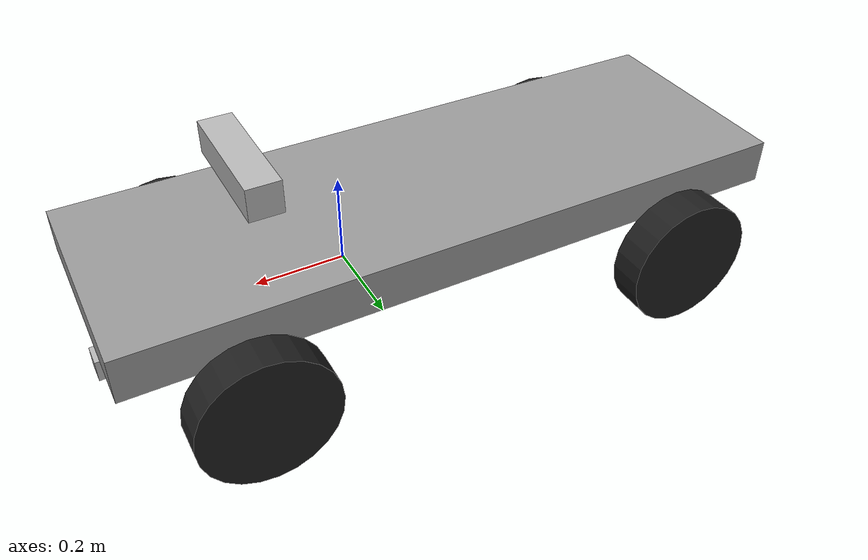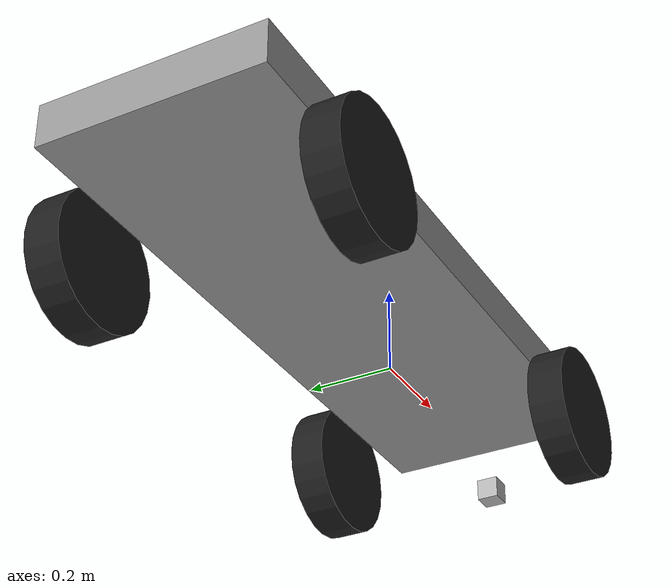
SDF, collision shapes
<?xml version="1.0" encoding="UTF-8"?>
<sdf version='1.6'>
  <model name='laser_rover'>
    <include>
      <uri>model://basic_rover</uri>
      <name>base</name>
    </include>
    <!--  3D LIDAR  -->
    <model name="laser_link">
      <link name="laser_left_link">
        <pose>0.53 0 -0.07 0 0 0</pose>
        <collision name="top_collision">
          <geometry>
            <box>
              <size>0.05 0.05 0.05</size>
            </box>
          </geometry>
        </collision>
        <visual name="laser_left_visual">
          <geometry>
            <box>
              <size>0.06 0.05 0.05</size>
            </box>
          </geometry>
        </visual>
        <inertial>
          <mass>0.1</mass>
          <inertia>
            <ixx>0.000011023</ixx>
            <iyy>0.000010623</iyy>
            <izz>0.000010036</izz>
            <ixy>0</ixy>
            <ixz>0</ixz>
            <iyz>0</iyz>
          </inertia>
        </inertial>
        <sensor type="ray" name="left_laser_sensor">
          <pose>0.03 0 0 0 1.5707 0</pose>
          <visualize>true</visualize>
          <update_rate>30</update_rate>
          <plugin name="laser_plugin" filename="libgazebo_ros_laser.so">
            <topicName>/scan</topicName>
            <frameName>laser_link</frameName>
          </plugin>
          <ray>
            <!-- The scan element contains the horizontal and vertical beams.-->
            <!-- Specs based on the HPS-3D160 Solid-state LIDAR -->
            <scan>
              <!-- The horizontal beams -->
              <horizontal>
                <samples>12</samples>
                <resolution>1</resolution>
                <min_angle>-0.53529248</min_angle>
                <max_angle>76</max_angle>
              </horizontal>
              <!-- The vertical beams -->
              <vertical>
                <samples>8</samples>
                <resolution>1</resolution>
                <min_angle>-0.53529248</min_angle>
                <max_angle>32</max_angle>
              </vertical>
            </scan>
            <range>
              <min>0.05</min>
              <max>12</max>
              <resolution>0.001</resolution>
            </range>
          </ray>
        </sensor>
      </link>
    </model>
    <joint name='chassis_left_laser_joint' type='fixed'>
      <parent>cart_front_steer::chassis</parent>
      <child>laser_link::laser_left_link</child>
      <pose frame=''>0.53 0 -0.07 0 0 0</pose>
      <physics>
        <ode>
          <limit>
            <cfm>0</cfm>
            <erp>0.2</erp>
          </limit>
          <suspension>
            <cfm>0</cfm>
            <erp>0.2</erp>
          </suspension>
        </ode>
      </physics>
    </joint>
  </model>
</sdf>

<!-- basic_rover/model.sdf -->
<sdf version='1.6'>
  <model name='basic_rover'>
    <model name='cart_front_steer'>
      <link name='chassis'>
        <pose frame=''>0 0 0.3 0 -0 0</pose>
        <inertial>
          <pose frame=''>0.1 0 0 0 -0 0</pose>
          <mass>10</mass>
          <inertia>
            <ixx>0.216667</ixx>
            <iyy>0.841667</iyy>
            <izz>1.04167</izz>
            <ixy>0</ixy>
            <ixz>0</ixz>
            <iyz>0</iyz>
          </inertia>
        </inertial>
        <collision name='collision'>
          <geometry>
            <box>
              <size>1.5 0.5 0.1</size>
            </box>
          </geometry>
          <max_contacts>10</max_contacts>
          <surface>
            <contact>
              <ode/>
            </contact>
            <bounce/>
            <friction>
              <torsional>
                <ode/>
              </torsional>
              <ode/>
            </friction>
          </surface>
        </collision>
        <visual name='visual'>
          <geometry>
            <box>
              <size>1.5 0.5 0.1</size>
            </box>
          </geometry>
          <material>
            <script>
              <uri>file://media/materials/scripts/gazebo.material</uri>
              <name>Gazebo/Grey</name>
            </script>
          </material>
        </visual>
        <self_collide>0</self_collide>
        <enable_wind>0</enable_wind>
        <kinematic>0</kinematic>
      </link>
      <link name="susp_front_right">
  +     <pose>0.5 -0.298 0.15  0 0 0</pose>
  +     <inertial>
  +       <mass>0.5</mass>
  +       <inertia>
  +         <ixx>0.000208333333333333</ixx>
  +         <iyy>0.000208333333333333</iyy>
  +         <izz>0.000208333333333333</izz>
  +         <ixy>0</ixy>
  +         <ixz>0</ixz>
  +         <iyz>0</iyz>
  +       </inertia>
  +     </inertial>
  +     <collision name="collision">
  +       <geometry>
  +         <box>
  +           <size>0.05 0.05 0.05</size>
  +         </box>
  +       </geometry>
  +     </collision>
  +     <visual name="visual">
  +       <geometry>
  +         <box>
  +           <size>0.05 0.05 0.05</size>
  +         </box>
  +       </geometry>
  +       <material>
  +         <script>
  +           <uri>file://media/materials/scripts/gazebo.material</uri>
  +           <name>Gazebo/Black</name>
  +         </script>
  +       </material>
  +     </visual>
  +   </link>
  +   <joint name="susp_front_right_prismatic" type="prismatic">
  +     <parent>chassis</parent>
  +     <child>susp_front_right</child>
  +     <axis>
  +       <xyz>0 0 -1</xyz>
  +       <limit>
  +         <lower>-0.3</lower>
  +         <upper>0.3</upper>
  +       </limit>
  +       <dynamics>
  +         <damping>100</damping>
  +         <spring_stiffness>500</spring_stiffness>
  +         <spring_reference>0.05</spring_reference>
  +       </dynamics>
  +     </axis>
  +     <physics>
  +       <ode>
  +         <implicit_spring_damper>1</implicit_spring_damper>
  +       </ode>
  +     </physics>
  +   </joint>
  +   <link name="wheel_front_right">
  +     <pose>0.5 -0.298 0.15  -1.5707963267949 0 0</pose>
  +     <inertial>
  +       <mass>0.5</mass>
  +       <inertia>
  +         <ixx>0.00307916666666667</ixx>
  +         <iyy>0.00307916666666667</iyy>
  +         <izz>0.005625</izz>
  +         <ixy>0</ixy>
  +         <ixz>0</ixz>
  +         <iyz>0</iyz>
  +       </inertia>
  +     </inertial>
  +     <collision name="collision">
  +       <geometry>
  +         <cylinder>
  +           <radius>0.15</radius>
  +           <length>0.08</length>
  +         </cylinder>
  +       </geometry>
+       </collision>
+       <visual name="visual">
+         <geometry>
+           <cylinder>
+             <radius>0.15</radius>
+             <length>0.08</length>
+           </cylinder>
+         </geometry>
+         <material>
+           <script>
+             <uri>file://media/materials/scripts/gazebo.material</uri>
+             <name>Gazebo/Black</name>
+           </script>
+         </material>
+       </visual>
+     </link>
+     <joint name="wheel_front_right_steer_spin" type="revolute">
+       <parent>susp_front_right</parent>
+       <child>wheel_front_right</child>
+       <axis>
+         <xyz>0 0 1</xyz>
+       </axis>
+     </joint>
+
+     <link name="susp_front_left">
+       <pose>0.5 0.298 0.15  0 0 0</pose>
+       <inertial>
+         <mass>0.5</mass>
+         <inertia>
+           <ixx>0.000208333333333333</ixx>
+           <iyy>0.000208333333333333</iyy>
+           <izz>0.000208333333333333</izz>
+           <ixy>0</ixy>
+           <ixz>0</ixz>
+           <iyz>0</iyz>
+         </inertia>
+       </inertial>
+       <collision name="collision">
+         <geometry>
+           <box>
+             <size>0.05 0.05 0.05</size>
+           </box>
+         </geometry>
+       </collision>
+       <visual name="visual">
+         <geometry>
+           <box>
+             <size>0.05 0.05 0.05</size>
+           </box>
+         </geometry>
+         <material>
+           <script>
+             <uri>file://media/materials/scripts/gazebo.material</uri>
+             <name>Gazebo/Black</name>
+           </script>
+         </material>
+       </visual>
+     </link>
+     <joint name="susp_front_left_prismatic" type="prismatic">
+       <parent>chassis</parent>
+       <child>susp_front_left</child>
+       <axis>
+         <xyz>0 0 -1</xyz>
+         <limit>
+           <lower>-0.3</lower>
+           <upper>0.3</upper>
+         </limit>
+         <dynamics>
+           <damping>100</damping>
+           <spring_stiffness>500</spring_stiffness>
+           <spring_reference>0.05</spring_reference>
+         </dynamics>
+       </axis>
+       <physics>
+         <ode>
+           <implicit_spring_damper>1</implicit_spring_damper>
+         </ode>
+       </physics>
+     </joint>
+     <link name="wheel_front_left">
+       <pose>0.5 0.298 0.15  -1.5707963267949 0 0</pose>
+       <inertial>
+         <mass>0.5</mass>
+         <inertia>
+           <ixx>0.00307916666666667</ixx>
+           <iyy>0.00307916666666667</iyy>
+           <izz>0.005625</izz>
+           <ixy>0</ixy>
+           <ixz>0</ixz>
+           <iyz>0</iyz>
+         </inertia>
+       </inertial>
+       <collision name="collision">
+         <geometry>
+           <cylinder>
+             <radius>0.15</radius>
+             <length>0.08</length>
+           </cylinder>
+         </geometry>
+       </collision>
+       <visual name="visual">
+         <geometry>
+           <cylinder>
+             <radius>0.15</radius>
+             <length>0.08</length>
+           </cylinder>
+         </geometry>
+         <material>
+           <script>
+             <uri>file://media/materials/scripts/gazebo.material</uri>
+             <name>Gazebo/Black</name>
+           </script>
+         </material>
+       </visual>
+     </link>
+     <joint name="wheel_front_left_steer_spin" type="revolute">
+       <parent>susp_front_left</parent>
+       <child>wheel_front_left</child>
+       <axis>
+         <xyz>0 0 1</xyz>
+       </axis>
+     </joint>
+
+     <link name="susp_rear_right">
+       <pose>-0.5 -0.298 0.15  0 0 0</pose>
+       <inertial>
+         <mass>0.5</mass>
+         <inertia>
+           <ixx>0.000208333333333333</ixx>
+           <iyy>0.000208333333333333</iyy>
+           <izz>0.000208333333333333</izz>
+           <ixy>0</ixy>
+           <ixz>0</ixz>
+           <iyz>0</iyz>
+         </inertia>
+       </inertial>
+       <collision name="collision">
+         <geometry>
+           <box>
+             <size>0.05 0.05 0.05</size>
+           </box>
+         </geometry>
+       </collision>
+       <visual name="visual">
+         <geometry>
+           <box>
+             <size>0.05 0.05 0.05</size>
+           </box>
+         </geometry>
+         <material>
+           <script>
+             <uri>file://media/materials/scripts/gazebo.material</uri>
+             <name>Gazebo/Black</name>
+           </script>
+         </material>
+       </visual>
+     </link>
+     <joint name="susp_rear_right_prismatic" type="prismatic">
+       <parent>chassis</parent>
+       <child>susp_rear_right</child>
+       <axis>
+         <xyz>0 0 -1</xyz>
+         <limit>
+           <lower>-0.3</lower>
+           <upper>0.3</upper>
+         </limit>
+         <dynamics>
+           <damping>100</damping>
+           <spring_stiffness>500</spring_stiffness>
+           <spring_reference>0.05</spring_reference>
+         </dynamics>
+       </axis>
+       <physics>
+         <ode>
+           <implicit_spring_damper>1</implicit_spring_damper>
+         </ode>
+       </physics>
+     </joint>
+     <link name="wheel_rear_right">
+       <pose>-0.5 -0.298 0.15  -1.5707963267949 0 0</pose>
+       <inertial>
+         <mass>0.5</mass>
+         <inertia>
+           <ixx>0.00307916666666667</ixx>
+           <iyy>0.00307916666666667</iyy>
+           <izz>0.005625</izz>
+           <ixy>0</ixy>
+           <ixz>0</ixz>
+           <iyz>0</iyz>
+         </inertia>
+       </inertial>
+       <collision name="collision">
+         <geometry>
+           <cylinder>
+             <radius>0.15</radius>
+             <length>0.08</length>
+           </cylinder>
+         </geometry>
+       </collision>
+       <visual name="visual">
+         <geometry>
+           <cylinder>
+             <radius>0.15</radius>
+             <length>0.08</length>
+           </cylinder>
+         </geometry>
+         <material>
+           <script>
+             <uri>file://media/materials/scripts/gazebo.material</uri>
+             <name>Gazebo/Black</name>
+           </script>
+         </material>
+       </visual>
+     </link>
+     <joint name="wheel_rear_right_spin" type="revolute">
+       <parent>susp_rear_right</parent>
+       <child>wheel_rear_right</child>
+       <axis>
+         <xyz>0 0 1</xyz>
+       </axis>
+     </joint>
+
+     <link name="susp_rear_left">
+       <pose>-0.5 0.298 0.15  0 0 0</pose>
+       <inertial>
+         <mass>0.5</mass>
+         <inertia>
+           <ixx>0.000208333333333333</ixx>
+           <iyy>0.000208333333333333</iyy>
+           <izz>0.000208333333333333</izz>
+           <ixy>0</ixy>
+           <ixz>0</ixz>
+           <iyz>0</iyz>
+         </inertia>
+       </inertial>
+       <collision name="collision">
+         <geometry>
+           <box>
+             <size>0.05 0.05 0.05</size>
+           </box>
+         </geometry>
+       </collision>
+       <visual name="visual">
+         <geometry>
+           <box>
+             <size>0.05 0.05 0.05</size>
+           </box>
+         </geometry>
+         <material>
+           <script>
+             <uri>file://media/materials/scripts/gazebo.material</uri>
+             <name>Gazebo/Black</name>
+           </script>
+         </material>
+       </visual>
+     </link>
+     <joint name="susp_rear_left_prismatic" type="prismatic">
+       <parent>chassis</parent>
+       <child>susp_rear_left</child>
+       <axis>
+         <xyz>0 0 -1</xyz>
+         <limit>
+           <lower>-0.3</lower>
+           <upper>0.3</upper>
+         </limit>
+         <dynamics>
+           <damping>100</damping>
+           <spring_stiffness>500</spring_stiffness>
+           <spring_reference>0.05</spring_reference>
+         </dynamics>
+       </axis>
+       <physics>
+         <ode>
+           <implicit_spring_damper>1</implicit_spring_damper>
+         </ode>
+       </physics>
+     </joint>
+     <link name="wheel_rear_left">
+       <pose>-0.5 0.298 0.15  -1.5707963267949 0 0</pose>
+       <inertial>
+         <mass>0.5</mass>
+         <inertia>
+           <ixx>0.00307916666666667</ixx>
+           <iyy>0.00307916666666667</iyy>
+           <izz>0.005625</izz>
+           <ixy>0</ixy>
+           <ixz>0</ixz>
+           <iyz>0</iyz>
+         </inertia>
+       </inertial>
+       <collision name="collision">
+         <geometry>
+           <cylinder>
+             <radius>0.15</radius>
+             <length>0.08</length>
+           </cylinder>
+         </geometry>
+       </collision>
+       <visual name="visual">
+         <geometry>
+           <cylinder>
+             <radius>0.15</radius>
+             <length>0.08</length>
+           </cylinder>
+         </geometry>
+         <material>
+           <script>
+             <uri>file://media/materials/scripts/gazebo.material</uri>
+             <name>Gazebo/Black</name>
+           </script>
+         </material>
+       </visual>
+     </link>
+     <joint name="wheel_rear_left_spin" type="revolute">
+       <parent>susp_rear_left</parent>
+       <child>wheel_rear_left</child>
+       <axis>
+         <xyz>0 0 1</xyz>
+       </axis>
+     </joint>

      <pose frame=''>-0.2 0 -0.2 -0 -0 -0</pose>
      <plugin name="skid_steer_drive_controller_custom" filename="libgazebo_ros_skid_steer_drive_custom.so">
        <updateRate>0.0</updateRate>
        <robotNamespace>/</robotNamespace>
        <leftFrontJoint>wheel_front_left_steer_spin</leftFrontJoint>
        <rightFrontJoint>wheel_front_right_steer_spin</rightFrontJoint>
        <leftRearJoint>wheel_rear_left_spin</leftRearJoint>
        <rightRearJoint>wheel_rear_right_spin</rightRearJoint>
        <leftMidJoint>wheel_rear_left_spin</leftMidJoint>
        <rightMidJoint>wheel_rear_right_spin</rightMidJoint>
        <wheelSeparation>0.596</wheelSeparation>
        <wheelDiameter>0.3</wheelDiameter>
        <robotBaseFrame>base_footprint</robotBaseFrame>
        <torque>10</torque>
        <commandTopic>cmd_vel</commandTopic>
        <odometryTopic>odom</odometryTopic>
        <odometryFrame>odom</odometryFrame>
        <covariance_x>0.000100</covariance_x>
        <covariance_y>0.000100</covariance_y>
        <covariance_yaw>0.000100</covariance_yaw>
        <broadcastTF>1</broadcastTF>
      </plugin>
    </model>
    <model name='kinect'>
    <plugin name="name_gps" filename="libhector_gazebo_ros_gps.so">
      <alwayson>1</alwayson>
      <updaterate>10.0</updaterate>
      <bodyname>gps_link</bodyname>
      <gaussianNoise>0.3 0.3 0.3</gaussianNoise>
      <topicname>fix</topicname>
      <velocitytopicname>fixvelocity</velocitytopicname>
      <drift>0.0 0.0 0.0</drift>
      <velocitydrift>0 0 0</velocitydrift>
      <velocitygaussiannoise>1 1 1</velocitygaussiannoise>
    </plugin>
      <pose frame=''>0.2 0 0.3 0 0 0</pose>
      <link name='camera_link'>
        <inertial>
          <mass>0.1</mass>
          <pose frame=''>0 0 0 0 0 0</pose>
          <inertia>
            <ixx>1</ixx>
            <ixy>0</ixy>
            <ixz>0</ixz>
            <iyy>1</iyy>
            <iyz>0</iyz>
            <izz>1</izz>
          </inertia>
        </inertial>
        <collision name='collision'>
          <geometry>
            <box>
              <size>0.073 0.276 0.072</size>
            </box>
          </geometry>
          <max_contacts>10</max_contacts>
          <surface>
            <contact>
              <ode/>
            </contact>
            <bounce/>
            <friction>
              <torsional>
                <ode/>
              </torsional>
              <ode/>
            </friction>
          </surface>
        </collision>
        <visual name='visual'>
          <geometry>
            <mesh>
              <uri>model://kinect/meshes/kinect.dae</uri>
            </mesh>
          </geometry>
        </visual>
        <gravity>1</gravity>
        <sensor name='imu_sensor' type='imu'>
          <always_on>1</always_on>
          <update_rate>100</update_rate>
          <visualize>1</visualize>
          <topic>__default_topic__</topic>
          <plugin name='imu_plugin' filename='libgazebo_ros_imu_sensor.so'>
            <topicName>imu</topicName>
            <bodyName>imu_link</bodyName>
            <updateRateHZ>10.0</updateRateHZ>
            <gaussianNoise>0.0</gaussianNoise>
            <xyzOffset>0 0 0</xyzOffset>
            <rpyOffset>0 0 0</rpyOffset>
            <frameName>imu_link</frameName>
          </plugin>
          <pose frame=''>0 0 0 0 -0 0</pose>
          <imu/>
        </sensor>

        <sensor name='camera' type='depth'>
          <plugin name='camera_plugin' filename='libgazebo_ros_openni_kinect.so'>
            <baseline>0.2</baseline>
            <alwaysOn>1</alwaysOn>
            <updateRate>0.0</updateRate>
            <cameraName>camera_ir</cameraName>
            <imageTopicName>/camera/color/image_raw</imageTopicName>
            <cameraInfoTopicName>/camera/color/camera_info</cameraInfoTopicName>
            <depthImageTopicName>/camera/depth/image_raw</depthImageTopicName>
            <depthImageCameraInfoTopicName>/camera/depth/camera_info</depthImageCameraInfoTopicName>
            <pointCloudTopicName>/camera/depth/points</pointCloudTopicName>
            <frameName>camera_link</frameName>
            <pointCloudCutoff>0.5</pointCloudCutoff>
            <pointCloudCutoffMax>3.0</pointCloudCutoffMax>
            <distortionK1>0</distortionK1>
            <distortionK2>0</distortionK2>
            <distortionK3>0</distortionK3>
            <distortionT1>0</distortionT1>
            <distortionT2>0</distortionT2>
            <CxPrime>0</CxPrime>
            <Cx>0</Cx>
            <Cy>0</Cy>
            <focalLength>0</focalLength>
            <hackBaseline>0</hackBaseline>
          </plugin>
          <update_rate>20</update_rate>
          <camera name='__default__'>
            <horizontal_fov>1.0472</horizontal_fov>
            <image>
              <width>640</width>
              <height>480</height>
              <format>R8G8B8</format>
            </image>
            <clip>
              <near>0.05</near>
              <far>10</far>
            </clip>
          </camera>
        </sensor>
        <self_collide>0</self_collide>
        <enable_wind>0</enable_wind>
        <kinematic>0</kinematic>
      </link>
    </model>
    <joint name='chassis_JOINT_1' type='fixed'>
      <parent>cart_front_steer::chassis</parent>
      <child>kinect::camera_link</child>
      <pose frame=''>-0.38 0 0.2 0 0 0</pose>
      <physics>
        <ode>
          <limit>
            <cfm>0</cfm>
            <erp>0.2</erp>
          </limit>
          <suspension>
            <cfm>0</cfm>
            <erp>0.2</erp>
          </suspension>
        </ode>
      </physics>
    </joint>
    <static>0</static>
    <allow_auto_disable>0</allow_auto_disable>
  </model>
</sdf>
